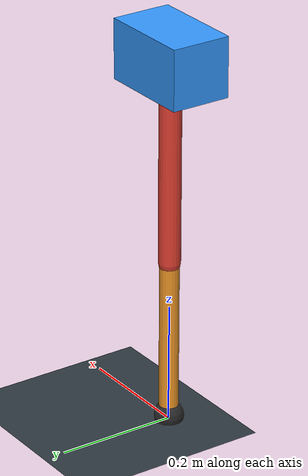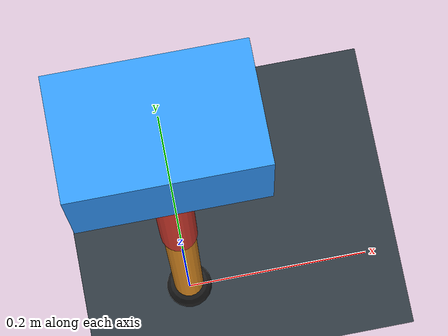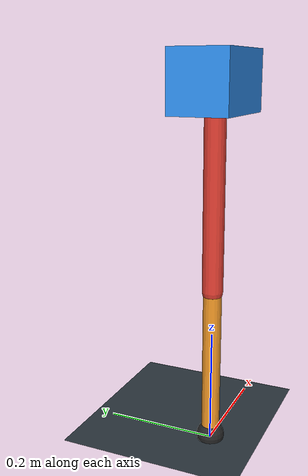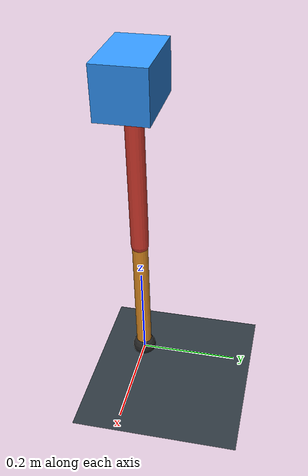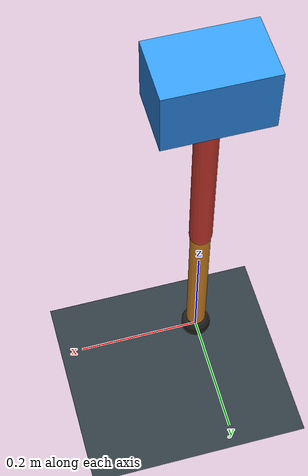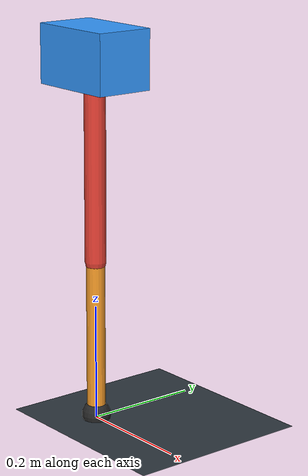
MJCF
<mujoco model="single_axis_two_bar">
  <compiler angle="radian" inertiafromgeom="true"/>
  <option timestep="0.001" integrator="implicitfast" gravity="0 0 -9.81"/>
  <default>
    <joint damping="0.08"/>
    <geom friction="1.2 0.01 0.0001" condim="3"/>
  </default>
  <worldbody>
    <geom name="floor" type="plane" size="5 5 0.1" rgba="0.18 0.22 0.25 1"/>
    <body name="carriage" pos="0 0 0.6256221572871445">
      <joint name="pole_slide" type="slide" axis="0 0 1"/>
      <geom name="payload" type="box" size="0.08 0.05 0.05" mass="2.217672330042652" rgba="0.2 0.6 1 1"/>
      <body name="thigh" pos="0 0 0">
        <joint name="hip" type="hinge" axis="0 1 0"/>
        <geom name="thigh_link" type="capsule" fromto="0 0 0 0 0 -0.34631276496044117" size="0.018" mass="0.24675242115375975" rgba="0.9 0.25 0.2 1"/>
        <body name="shank" pos="0 0 -0.34631276496044117">
          <joint name="knee" type="hinge" axis="0 1 0"/>
          <geom name="shank_link" type="capsule" fromto="0 0 0 0 0 -0.2728853353355841" size="0.016" mass="0.19443440728817088" rgba="0.95 0.6 0.15 1"/>
          <geom name="foot" type="sphere" pos="0 0 -0.2728853353355841" size="0.025" mass="0.03" rgba="0.15 0.15 0.15 1"/>
          <site name="toe" pos="0 0 -0.2728853353355841" size="0.008"/>
        </body>
      </body>
    </body>
  </worldbody>
  <actuator>
    <motor name="hip_motor" joint="hip" ctrlrange="-25.23476297922181 25.23476297922181"/>
    <motor name="knee_motor" joint="knee" ctrlrange="-56.53032864649605 56.53032864649605"/>
  </actuator>
</mujoco>
